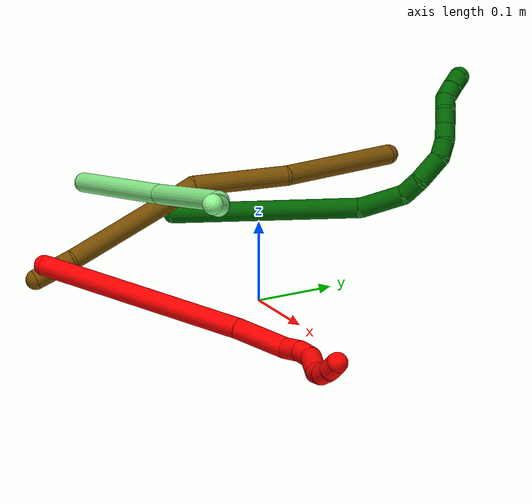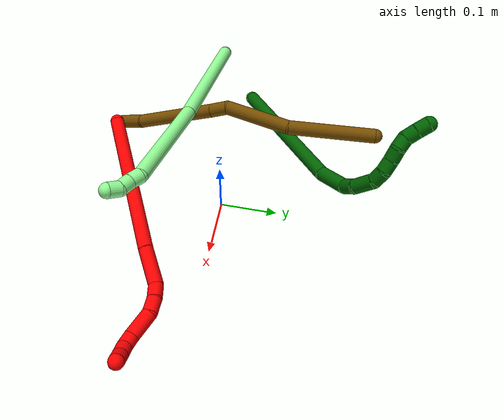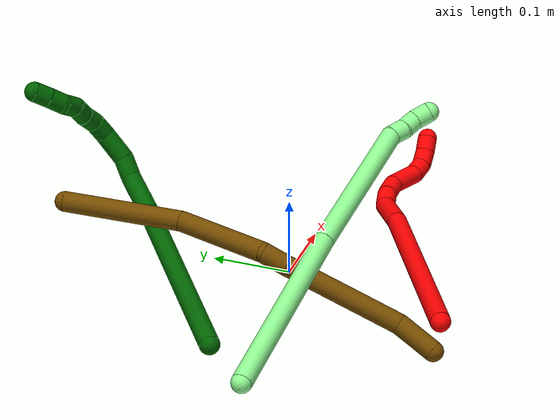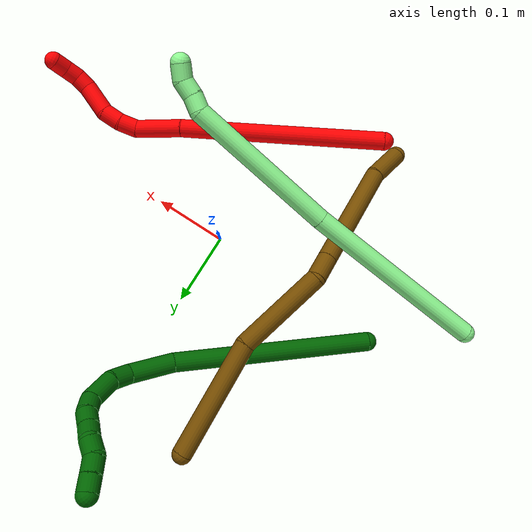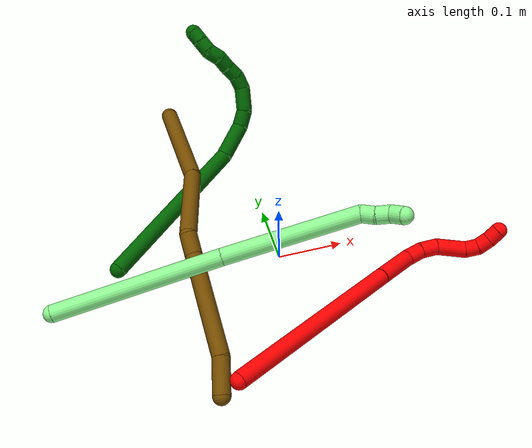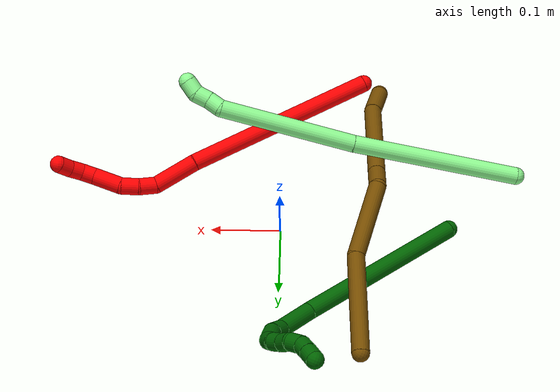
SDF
<sdf version="1.7">
 <world name="default">
  <model name="2">
   <static>0</static>
   <link name="2">
    <collision name="collision-cylinder-e_1_1_4">
     <pose>0.068239 0.036273 0.116521 -0.301792 0.509854 -0.079207</pose>
     <geometry><cylinder><radius>0.0125</radius><length>0.279639</length></cylinder></geometry>
     <surface>
      <friction><ode><mu>1.16</mu><mu2>1.16</mu2><slip1>0</slip1><slip2>0</slip2></ode></friction>
      <contact><ode><kp>1e+06</kp><kd>1</kd><max_vel>0</max_vel><min_depth>0.001</min_depth></ode></contact>
     </surface>
    </collision>
    <visual name="visual-cylinder-e_1_1_4">
     <pose>0.068239 0.036273 0.116521 -0.301792 0.509854 -0.079207</pose>
     <geometry><cylinder><radius>0.0125</radius><length>0.279639</length></cylinder></geometry>
     <material><ambient>1 0 0 1</ambient></material>
    </visual>
    <collision name="collision-cylinder-e_2_4_5">
     <pose>0.155263 0.082108 0.258052 -0.365177 0.611788 -0.116492</pose>
     <geometry><cylinder><radius>0.0125</radius><length>0.065416</length></cylinder></geometry>
     <surface>
      <friction><ode><mu>1.16</mu><mu2>1.16</mu2><slip1>0</slip1><slip2>0</slip2></ode></friction>
      <contact><ode><kp>1e+06</kp><kd>1</kd><max_vel>0</max_vel><min_depth>0.001</min_depth></ode></contact>
     </surface>
    </collision>
    <visual name="visual-cylinder-e_2_4_5">
     <pose>0.155263 0.082108 0.258052 -0.365177 0.611788 -0.116492</pose>
     <geometry><cylinder><radius>0.0125</radius><length>0.065416</length></cylinder></geometry>
     <material><ambient>1 0 0 1</ambient></material>
    </visual>
    <collision name="collision-cylinder-e_3_5_6">
     <pose>0.177439 0.091984 0.295327 -0.025599 0.269648 -0.003473</pose>
     <geometry><cylinder><radius>0.0125</radius><length>0.025458</length></cylinder></geometry>
     <surface>
      <friction><ode><mu>1.16</mu><mu2>1.16</mu2><slip1>0</slip1><slip2>0</slip2></ode></friction>
      <contact><ode><kp>1e+06</kp><kd>1</kd><max_vel>0</max_vel><min_depth>0.001</min_depth></ode></contact>
     </surface>
    </collision>
    <visual name="visual-cylinder-e_3_5_6">
     <pose>0.177439 0.091984 0.295327 -0.025599 0.269648 -0.003473</pose>
     <geometry><cylinder><radius>0.0125</radius><length>0.025458</length></cylinder></geometry>
     <material><ambient>1 0 0 1</ambient></material>
    </visual>
    <collision name="collision-cylinder-e_4_6_7">
     <pose>0.185185 0.089622 0.319383 0.223194 0.345761 0.039132</pose>
     <geometry><cylinder><radius>0.0125</radius><length>0.025704</length></cylinder></geometry>
     <surface>
      <friction><ode><mu>1.16</mu><mu2>1.16</mu2><slip1>0</slip1><slip2>0</slip2></ode></friction>
      <contact><ode><kp>1e+06</kp><kd>1</kd><max_vel>0</max_vel><min_depth>0.001</min_depth></ode></contact>
     </surface>
    </collision>
    <visual name="visual-cylinder-e_4_6_7">
     <pose>0.185185 0.089622 0.319383 0.223194 0.345761 0.039132</pose>
     <geometry><cylinder><radius>0.0125</radius><length>0.025704</length></cylinder></geometry>
     <material><ambient>1 0 0 1</ambient></material>
    </visual>
    <collision name="collision-cylinder-e_5_7_8">
     <pose>0.196237 0.074652 0.347981 0.631559 0.311137 0.102391</pose>
     <geometry><cylinder><radius>0.0125</radius><length>0.043747</length></cylinder></geometry>
     <surface>
      <friction><ode><mu>1.16</mu><mu2>1.16</mu2><slip1>0</slip1><slip2>0</slip2></ode></friction>
      <contact><ode><kp>1e+06</kp><kd>1</kd><max_vel>0</max_vel><min_depth>0.001</min_depth></ode></contact>
     </surface>
    </collision>
    <visual name="visual-cylinder-e_5_7_8">
     <pose>0.196237 0.074652 0.347981 0.631559 0.311137 0.102391</pose>
     <geometry><cylinder><radius>0.0125</radius><length>0.043747</length></cylinder></geometry>
     <material><ambient>1 0 0 1</ambient></material>
    </visual>
    <collision name="collision-cylinder-e_6_8_9">
     <pose>0.203868 0.05868 0.374059 0.377615 0.093424 0.017864</pose>
     <geometry><cylinder><radius>0.0125</radius><length>0.020036</length></cylinder></geometry>
     <surface>
      <friction><ode><mu>1.16</mu><mu2>1.16</mu2><slip1>0</slip1><slip2>0</slip2></ode></friction>
      <contact><ode><kp>1e+06</kp><kd>1</kd><max_vel>0</max_vel><min_depth>0.001</min_depth></ode></contact>
     </surface>
    </collision>
    <visual name="visual-cylinder-e_6_8_9">
     <pose>0.203868 0.05868 0.374059 0.377615 0.093424 0.017864</pose>
     <geometry><cylinder><radius>0.0125</radius><length>0.020036</length></cylinder></geometry>
     <material><ambient>1 0 0 1</ambient></material>
    </visual>
    <collision name="collision-cylinder-e_7_9_10">
     <pose>0.203281 0.054202 0.393182 0.081025 -0.152789 -0.006205</pose>
     <geometry><cylinder><radius>0.0125</radius><length>0.02</length></cylinder></geometry>
     <surface>
      <friction><ode><mu>1.16</mu><mu2>1.16</mu2><slip1>0</slip1><slip2>0</slip2></ode></friction>
      <contact><ode><kp>1e+06</kp><kd>1</kd><max_vel>0</max_vel><min_depth>0.001</min_depth></ode></contact>
     </surface>
    </collision>
    <visual name="visual-cylinder-e_7_9_10">
     <pose>0.203281 0.054202 0.393182 0.081025 -0.152789 -0.006205</pose>
     <geometry><cylinder><radius>0.0125</radius><length>0.02</length></cylinder></geometry>
     <material><ambient>1 0 0 1</ambient></material>
    </visual>
    <collision name="collision-cylinder-e_8_10_2">
     <pose>0.198322 0.053468 0.412424 -0.007014 -0.350813 0.001243</pose>
     <geometry><cylinder><radius>0.0125</radius><length>0.020001</length></cylinder></geometry>
     <surface>
      <friction><ode><mu>1.16</mu><mu2>1.16</mu2><slip1>0</slip1><slip2>0</slip2></ode></friction>
      <contact><ode><kp>1e+06</kp><kd>1</kd><max_vel>0</max_vel><min_depth>0.001</min_depth></ode></contact>
     </surface>
    </collision>
    <visual name="visual-cylinder-e_8_10_2">
     <pose>0.198322 0.053468 0.412424 -0.007014 -0.350813 0.001243</pose>
     <geometry><cylinder><radius>0.0125</radius><length>0.020001</length></cylinder></geometry>
     <material><ambient>1 0 0 1</ambient></material>
    </visual>
    <collision name="collision-sphere-2">
     <pose>0.194885 0.053534 0.421815 0 -0 0</pose>
     <geometry><sphere><radius>0.0125</radius></sphere></geometry>
     <surface>
      <friction><ode><mu>1.16</mu><mu2>1.16</mu2><slip1>0</slip1><slip2>0</slip2></ode></friction>
      <contact><ode><kp>1e+06</kp><kd>1</kd><max_vel>0</max_vel><min_depth>0.001</min_depth></ode></contact>
     </surface>
    </collision>
    <visual name="visual-sphere-2">
     <pose>0.194885 0.053534 0.421815 0 -0 0</pose>
     <geometry><sphere><radius>0.0125</radius></sphere></geometry>
     <material><ambient>1 0 0 1</ambient></material>
    </visual>
    <collision name="collision-sphere-10">
     <pose>0.201759 0.053402 0.403033 0 -0 0</pose>
     <geometry><sphere><radius>0.0125</radius></sphere></geometry>
     <surface>
      <friction><ode><mu>1.16</mu><mu2>1.16</mu2><slip1>0</slip1><slip2>0</slip2></ode></friction>
      <contact><ode><kp>1e+06</kp><kd>1</kd><max_vel>0</max_vel><min_depth>0.001</min_depth></ode></contact>
     </surface>
    </collision>
    <visual name="visual-sphere-10">
     <pose>0.201759 0.053402 0.403033 0 -0 0</pose>
     <geometry><sphere><radius>0.0125</radius></sphere></geometry>
     <material><ambient>1 0 0 1</ambient></material>
    </visual>
    <collision name="collision-sphere-9">
     <pose>0.204803 0.055002 0.383331 0 -0 0</pose>
     <geometry><sphere><radius>0.0125</radius></sphere></geometry>
     <surface>
      <friction><ode><mu>1.16</mu><mu2>1.16</mu2><slip1>0</slip1><slip2>0</slip2></ode></friction>
      <contact><ode><kp>1e+06</kp><kd>1</kd><max_vel>0</max_vel><min_depth>0.001</min_depth></ode></contact>
     </surface>
    </collision>
    <visual name="visual-sphere-9">
     <pose>0.204803 0.055002 0.383331 0 -0 0</pose>
     <geometry><sphere><radius>0.0125</radius></sphere></geometry>
     <material><ambient>1 0 0 1</ambient></material>
    </visual>
    <collision name="collision-sphere-4">
     <pose>0.136478 0.072546 0.233042 0 -0 0</pose>
     <geometry><sphere><radius>0.0125</radius></sphere></geometry>
     <surface>
      <friction><ode><mu>1.16</mu><mu2>1.16</mu2><slip1>0</slip1><slip2>0</slip2></ode></friction>
      <contact><ode><kp>1e+06</kp><kd>1</kd><max_vel>0</max_vel><min_depth>0.001</min_depth></ode></contact>
     </surface>
    </collision>
    <visual name="visual-sphere-4">
     <pose>0.136478 0.072546 0.233042 0 -0 0</pose>
     <geometry><sphere><radius>0.0125</radius></sphere></geometry>
     <material><ambient>1 0 0 1</ambient></material>
    </visual>
    <collision name="collision-sphere-1">
     <geometry><sphere><radius>0.0125</radius></sphere></geometry>
     <surface>
      <friction><ode><mu>1.16</mu><mu2>1.16</mu2><slip1>0</slip1><slip2>0</slip2></ode></friction>
      <contact><ode><kp>1e+06</kp><kd>1</kd><max_vel>0</max_vel><min_depth>0.001</min_depth></ode></contact>
     </surface>
    </collision>
    <visual name="visual-sphere-1">
     <geometry><sphere><radius>0.0125</radius></sphere></geometry>
     <material><ambient>1 0 0 1</ambient></material>
    </visual>
    <collision name="collision-sphere-8">
     <pose>0.202934 0.062358 0.364788 0 -0 0</pose>
     <geometry><sphere><radius>0.0125</radius></sphere></geometry>
     <surface>
      <friction><ode><mu>1.16</mu><mu2>1.16</mu2><slip1>0</slip1><slip2>0</slip2></ode></friction>
      <contact><ode><kp>1e+06</kp><kd>1</kd><max_vel>0</max_vel><min_depth>0.001</min_depth></ode></contact>
     </surface>
    </collision>
    <visual name="visual-sphere-8">
     <pose>0.202934 0.062358 0.364788 0 -0 0</pose>
     <geometry><sphere><radius>0.0125</radius></sphere></geometry>
     <material><ambient>1 0 0 1</ambient></material>
    </visual>
    <collision name="collision-sphere-5">
     <pose>0.174048 0.09167 0.283062 0 -0 0</pose>
     <geometry><sphere><radius>0.0125</radius></sphere></geometry>
     <surface>
      <friction><ode><mu>1.16</mu><mu2>1.16</mu2><slip1>0</slip1><slip2>0</slip2></ode></friction>
      <contact><ode><kp>1e+06</kp><kd>1</kd><max_vel>0</max_vel><min_depth>0.001</min_depth></ode></contact>
     </surface>
    </collision>
    <visual name="visual-sphere-5">
     <pose>0.174048 0.09167 0.283062 0 -0 0</pose>
     <geometry><sphere><radius>0.0125</radius></sphere></geometry>
     <material><ambient>1 0 0 1</ambient></material>
    </visual>
    <collision name="collision-sphere-6">
     <pose>0.18083 0.092298 0.307592 0 -0 0</pose>
     <geometry><sphere><radius>0.0125</radius></sphere></geometry>
     <surface>
      <friction><ode><mu>1.16</mu><mu2>1.16</mu2><slip1>0</slip1><slip2>0</slip2></ode></friction>
      <contact><ode><kp>1e+06</kp><kd>1</kd><max_vel>0</max_vel><min_depth>0.001</min_depth></ode></contact>
     </surface>
    </collision>
    <visual name="visual-sphere-6">
     <pose>0.18083 0.092298 0.307592 0 -0 0</pose>
     <geometry><sphere><radius>0.0125</radius></sphere></geometry>
     <material><ambient>1 0 0 1</ambient></material>
    </visual>
    <collision name="collision-sphere-7">
     <pose>0.189541 0.086946 0.331175 0 -0 0</pose>
     <geometry><sphere><radius>0.0125</radius></sphere></geometry>
     <surface>
      <friction><ode><mu>1.16</mu><mu2>1.16</mu2><slip1>0</slip1><slip2>0</slip2></ode></friction>
      <contact><ode><kp>1e+06</kp><kd>1</kd><max_vel>0</max_vel><min_depth>0.001</min_depth></ode></contact>
     </surface>
    </collision>
    <visual name="visual-sphere-7">
     <pose>0.189541 0.086946 0.331175 0 -0 0</pose>
     <geometry><sphere><radius>0.0125</radius></sphere></geometry>
     <material><ambient>1 0 0 1</ambient></material>
    </visual>
    <inertial>
     <pose>0.118436 0.05351 0.208045 0 -0 0</pose>
     <mass>0.5</mass>
     <inertia>
      <ixx>0.00152</ixx>
      <ixy>0</ixy>
      <ixz>0</ixz>
      <iyy>0.001683</iyy>
      <iyz>0</iyz>
      <izz>-0.001357</izz>
     </inertia>
    </inertial>
   </link>
   <pose>-0.118764 -0.229082 0.047534 0.280847 1.14586 0.46319</pose>
  </model>
  <model name="6">
   <static>0</static>
   <link name="6">
    <collision name="collision-cylinder-e_1_1_4">
     <pose>0.003642 0.090975 0.089647 -0.792749 0.028505 -0.011931</pose>
     <geometry><cylinder><radius>0.0125</radius><length>0.255548</length></cylinder></geometry>
     <surface>
      <friction><ode><mu>1.16</mu><mu2>1.16</mu2><slip1>0</slip1><slip2>0</slip2></ode></friction>
      <contact><ode><kp>1e+06</kp><kd>1</kd><max_vel>0</max_vel><min_depth>0.001</min_depth></ode></contact>
     </surface>
    </collision>
    <visual name="visual-cylinder-e_1_1_4">
     <pose>0.003642 0.090975 0.089647 -0.792749 0.028505 -0.011931</pose>
     <geometry><cylinder><radius>0.0125</radius><length>0.255548</length></cylinder></geometry>
     <material><ambient>0 0.392157 0.003922 1</ambient></material>
    </visual>
    <collision name="collision-cylinder-e_2_4_5">
     <pose>0.015002 0.203833 0.196663 -0.899907 0.26954 -0.130794</pose>
     <geometry><cylinder><radius>0.0125</radius><length>0.057971</length></cylinder></geometry>
     <surface>
      <friction><ode><mu>1.16</mu><mu2>1.16</mu2><slip1>0</slip1><slip2>0</slip2></ode></friction>
      <contact><ode><kp>1e+06</kp><kd>1</kd><max_vel>0</max_vel><min_depth>0.001</min_depth></ode></contact>
     </surface>
    </collision>
    <visual name="visual-cylinder-e_2_4_5">
     <pose>0.015002 0.203833 0.196663 -0.899907 0.26954 -0.130794</pose>
     <geometry><cylinder><radius>0.0125</radius><length>0.057971</length></cylinder></geometry>
     <material><ambient>0 0.392157 0.003922 1</ambient></material>
    </visual>
    <collision name="collision-cylinder-e_3_5_6">
     <pose>0.029473 0.236683 0.217663 -1.25105 0.528982 -0.386363</pose>
     <geometry><cylinder><radius>0.0125</radius><length>0.026762</length></cylinder></geometry>
     <surface>
      <friction><ode><mu>1.16</mu><mu2>1.16</mu2><slip1>0</slip1><slip2>0</slip2></ode></friction>
      <contact><ode><kp>1e+06</kp><kd>1</kd><max_vel>0</max_vel><min_depth>0.001</min_depth></ode></contact>
     </surface>
    </collision>
    <visual name="visual-cylinder-e_3_5_6">
     <pose>0.029473 0.236683 0.217663 -1.25105 0.528982 -0.386363</pose>
     <geometry><cylinder><radius>0.0125</radius><length>0.026762</length></cylinder></geometry>
     <material><ambient>0 0.392157 0.003922 1</ambient></material>
    </visual>
    <collision name="collision-cylinder-e_4_6_7">
     <pose>0.05074 0.258379 0.226387 -1.12759 0.885035 -0.582172</pose>
     <geometry><cylinder><radius>0.0125</radius><length>0.037508</length></cylinder></geometry>
     <surface>
      <friction><ode><mu>1.16</mu><mu2>1.16</mu2><slip1>0</slip1><slip2>0</slip2></ode></friction>
      <contact><ode><kp>1e+06</kp><kd>1</kd><max_vel>0</max_vel><min_depth>0.001</min_depth></ode></contact>
     </surface>
    </collision>
    <visual name="visual-cylinder-e_4_6_7">
     <pose>0.05074 0.258379 0.226387 -1.12759 0.885035 -0.582172</pose>
     <geometry><cylinder><radius>0.0125</radius><length>0.037508</length></cylinder></geometry>
     <material><ambient>0 0.392157 0.003922 1</ambient></material>
    </visual>
    <collision name="collision-cylinder-e_5_7_8">
     <pose>0.075477 0.272734 0.230545 -1.82326 1.21961 -1.46753</pose>
     <geometry><cylinder><radius>0.0125</radius><length>0.021773</length></cylinder></geometry>
     <surface>
      <friction><ode><mu>1.16</mu><mu2>1.16</mu2><slip1>0</slip1><slip2>0</slip2></ode></friction>
      <contact><ode><kp>1e+06</kp><kd>1</kd><max_vel>0</max_vel><min_depth>0.001</min_depth></ode></contact>
     </surface>
    </collision>
    <visual name="visual-cylinder-e_5_7_8">
     <pose>0.075477 0.272734 0.230545 -1.82326 1.21961 -1.46753</pose>
     <geometry><cylinder><radius>0.0125</radius><length>0.021773</length></cylinder></geometry>
     <material><ambient>0 0.392157 0.003922 1</ambient></material>
    </visual>
    <collision name="collision-cylinder-e_6_8_9">
     <pose>0.095609 0.276451 0.227412 -3.10044 1.3524 -3.09031</pose>
     <geometry><cylinder><radius>0.0125</radius><length>0.020303</length></cylinder></geometry>
     <surface>
      <friction><ode><mu>1.16</mu><mu2>1.16</mu2><slip1>0</slip1><slip2>0</slip2></ode></friction>
      <contact><ode><kp>1e+06</kp><kd>1</kd><max_vel>0</max_vel><min_depth>0.001</min_depth></ode></contact>
     </surface>
    </collision>
    <visual name="visual-cylinder-e_6_8_9">
     <pose>0.095609 0.276451 0.227412 -3.10044 1.3524 -3.09031</pose>
     <geometry><cylinder><radius>0.0125</radius><length>0.020303</length></cylinder></geometry>
     <material><ambient>0 0.392157 0.003922 1</ambient></material>
    </visual>
    <collision name="collision-cylinder-e_7_9_10">
     <pose>0.115043 0.277866 0.222249 -2.72117 1.24218 -2.56203</pose>
     <geometry><cylinder><radius>0.0125</radius><length>0.020124</length></cylinder></geometry>
     <surface>
      <friction><ode><mu>1.16</mu><mu2>1.16</mu2><slip1>0</slip1><slip2>0</slip2></ode></friction>
      <contact><ode><kp>1e+06</kp><kd>1</kd><max_vel>0</max_vel><min_depth>0.001</min_depth></ode></contact>
     </surface>
    </collision>
    <visual name="visual-cylinder-e_7_9_10">
     <pose>0.115043 0.277866 0.222249 -2.72117 1.24218 -2.56203</pose>
     <geometry><cylinder><radius>0.0125</radius><length>0.020124</length></cylinder></geometry>
     <material><ambient>0 0.392157 0.003922 1</ambient></material>
    </visual>
    <collision name="collision-cylinder-e_8_10_11">
     <pose>0.134223 0.276932 0.217962 2.10045 1.30595 1.8552</pose>
     <geometry><cylinder><radius>0.0125</radius><length>0.020009</length></cylinder></geometry>
     <surface>
      <friction><ode><mu>1.16</mu><mu2>1.16</mu2><slip1>0</slip1><slip2>0</slip2></ode></friction>
      <contact><ode><kp>1e+06</kp><kd>1</kd><max_vel>0</max_vel><min_depth>0.001</min_depth></ode></contact>
     </surface>
    </collision>
    <visual name="visual-cylinder-e_8_10_11">
     <pose>0.134223 0.276932 0.217962 2.10045 1.30595 1.8552</pose>
     <geometry><cylinder><radius>0.0125</radius><length>0.020009</length></cylinder></geometry>
     <material><ambient>0 0.392157 0.003922 1</ambient></material>
    </visual>
    <collision name="collision-cylinder-e_9_11_12">
     <pose>0.153639 0.275037 0.218787 -0.16836 1.3511 -0.135025</pose>
     <geometry><cylinder><radius>0.0125</radius><length>0.020001</length></cylinder></geometry>
     <surface>
      <friction><ode><mu>1.16</mu><mu2>1.16</mu2><slip1>0</slip1><slip2>0</slip2></ode></friction>
      <contact><ode><kp>1e+06</kp><kd>1</kd><max_vel>0</max_vel><min_depth>0.001</min_depth></ode></contact>
     </surface>
    </collision>
    <visual name="visual-cylinder-e_9_11_12">
     <pose>0.153639 0.275037 0.218787 -0.16836 1.3511 -0.135025</pose>
     <geometry><cylinder><radius>0.0125</radius><length>0.020001</length></cylinder></geometry>
     <material><ambient>0 0.392157 0.003922 1</ambient></material>
    </visual>
    <collision name="collision-cylinder-e_10_12_2">
     <pose>0.173047 0.27557 0.223561 -0.063931 1.3046 -0.048841</pose>
     <geometry><cylinder><radius>0.0125</radius><length>0.02</length></cylinder></geometry>
     <surface>
      <friction><ode><mu>1.16</mu><mu2>1.16</mu2><slip1>0</slip1><slip2>0</slip2></ode></friction>
      <contact><ode><kp>1e+06</kp><kd>1</kd><max_vel>0</max_vel><min_depth>0.001</min_depth></ode></contact>
     </surface>
    </collision>
    <visual name="visual-cylinder-e_10_12_2">
     <pose>0.173047 0.27557 0.223561 -0.063931 1.3046 -0.048841</pose>
     <geometry><cylinder><radius>0.0125</radius><length>0.02</length></cylinder></geometry>
     <material><ambient>0 0.392157 0.003922 1</ambient></material>
    </visual>
    <collision name="collision-sphere-2">
     <pose>0.182695 0.275738 0.226186 0 -0 0</pose>
     <geometry><sphere><radius>0.0125</radius></sphere></geometry>
     <surface>
      <friction><ode><mu>1.16</mu><mu2>1.16</mu2><slip1>0</slip1><slip2>0</slip2></ode></friction>
      <contact><ode><kp>1e+06</kp><kd>1</kd><max_vel>0</max_vel><min_depth>0.001</min_depth></ode></contact>
     </surface>
    </collision>
    <visual name="visual-sphere-2">
     <pose>0.182695 0.275738 0.226186 0 -0 0</pose>
     <geometry><sphere><radius>0.0125</radius></sphere></geometry>
     <material><ambient>0 0.392157 0.003922 1</ambient></material>
    </visual>
    <collision name="collision-sphere-12">
     <pose>0.163399 0.275402 0.220936 0 -0 0</pose>
     <geometry><sphere><radius>0.0125</radius></sphere></geometry>
     <surface>
      <friction><ode><mu>1.16</mu><mu2>1.16</mu2><slip1>0</slip1><slip2>0</slip2></ode></friction>
      <contact><ode><kp>1e+06</kp><kd>1</kd><max_vel>0</max_vel><min_depth>0.001</min_depth></ode></contact>
     </surface>
    </collision>
    <visual name="visual-sphere-12">
     <pose>0.163399 0.275402 0.220936 0 -0 0</pose>
     <geometry><sphere><radius>0.0125</radius></sphere></geometry>
     <material><ambient>0 0.392157 0.003922 1</ambient></material>
    </visual>
    <collision name="collision-sphere-11">
     <pose>0.143879 0.274672 0.216639 0 -0 0</pose>
     <geometry><sphere><radius>0.0125</radius></sphere></geometry>
     <surface>
      <friction><ode><mu>1.16</mu><mu2>1.16</mu2><slip1>0</slip1><slip2>0</slip2></ode></friction>
      <contact><ode><kp>1e+06</kp><kd>1</kd><max_vel>0</max_vel><min_depth>0.001</min_depth></ode></contact>
     </surface>
    </collision>
    <visual name="visual-sphere-11">
     <pose>0.143879 0.274672 0.216639 0 -0 0</pose>
     <geometry><sphere><radius>0.0125</radius></sphere></geometry>
     <material><ambient>0 0.392157 0.003922 1</ambient></material>
    </visual>
    <collision name="collision-sphere-10">
     <pose>0.124567 0.279192 0.219285 0 -0 0</pose>
     <geometry><sphere><radius>0.0125</radius></sphere></geometry>
     <surface>
      <friction><ode><mu>1.16</mu><mu2>1.16</mu2><slip1>0</slip1><slip2>0</slip2></ode></friction>
      <contact><ode><kp>1e+06</kp><kd>1</kd><max_vel>0</max_vel><min_depth>0.001</min_depth></ode></contact>
     </surface>
    </collision>
    <visual name="visual-sphere-10">
     <pose>0.124567 0.279192 0.219285 0 -0 0</pose>
     <geometry><sphere><radius>0.0125</radius></sphere></geometry>
     <material><ambient>0 0.392157 0.003922 1</ambient></material>
    </visual>
    <collision name="collision-sphere-9">
     <pose>0.10552 0.276541 0.225214 0 -0 0</pose>
     <geometry><sphere><radius>0.0125</radius></sphere></geometry>
     <surface>
      <friction><ode><mu>1.16</mu><mu2>1.16</mu2><slip1>0</slip1><slip2>0</slip2></ode></friction>
      <contact><ode><kp>1e+06</kp><kd>1</kd><max_vel>0</max_vel><min_depth>0.001</min_depth></ode></contact>
     </surface>
    </collision>
    <visual name="visual-sphere-9">
     <pose>0.10552 0.276541 0.225214 0 -0 0</pose>
     <geometry><sphere><radius>0.0125</radius></sphere></geometry>
     <material><ambient>0 0.392157 0.003922 1</ambient></material>
    </visual>
    <collision name="collision-sphere-4">
     <pose>0.007283 0.181949 0.179294 0 -0 0</pose>
     <geometry><sphere><radius>0.0125</radius></sphere></geometry>
     <surface>
      <friction><ode><mu>1.16</mu><mu2>1.16</mu2><slip1>0</slip1><slip2>0</slip2></ode></friction>
      <contact><ode><kp>1e+06</kp><kd>1</kd><max_vel>0</max_vel><min_depth>0.001</min_depth></ode></contact>
     </surface>
    </collision>
    <visual name="visual-sphere-4">
     <pose>0.007283 0.181949 0.179294 0 -0 0</pose>
     <geometry><sphere><radius>0.0125</radius></sphere></geometry>
     <material><ambient>0 0.392157 0.003922 1</ambient></material>
    </visual>
    <collision name="collision-sphere-1">
     <geometry><sphere><radius>0.0125</radius></sphere></geometry>
     <surface>
      <friction><ode><mu>1.16</mu><mu2>1.16</mu2><slip1>0</slip1><slip2>0</slip2></ode></friction>
      <contact><ode><kp>1e+06</kp><kd>1</kd><max_vel>0</max_vel><min_depth>0.001</min_depth></ode></contact>
     </surface>
    </collision>
    <visual name="visual-sphere-1">
     <geometry><sphere><radius>0.0125</radius></sphere></geometry>
     <material><ambient>0 0.392157 0.003922 1</ambient></material>
    </visual>
    <collision name="collision-sphere-8">
     <pose>0.085699 0.27636 0.229609 0 -0 0</pose>
     <geometry><sphere><radius>0.0125</radius></sphere></geometry>
     <surface>
      <friction><ode><mu>1.16</mu><mu2>1.16</mu2><slip1>0</slip1><slip2>0</slip2></ode></friction>
      <contact><ode><kp>1e+06</kp><kd>1</kd><max_vel>0</max_vel><min_depth>0.001</min_depth></ode></contact>
     </surface>
    </collision>
    <visual name="visual-sphere-8">
     <pose>0.085699 0.27636 0.229609 0 -0 0</pose>
     <geometry><sphere><radius>0.0125</radius></sphere></geometry>
     <material><ambient>0 0.392157 0.003922 1</ambient></material>
    </visual>
    <collision name="collision-sphere-5">
     <pose>0.02272 0.225717 0.214032 0 -0 0</pose>
     <geometry><sphere><radius>0.0125</radius></sphere></geometry>
     <surface>
      <friction><ode><mu>1.16</mu><mu2>1.16</mu2><slip1>0</slip1><slip2>0</slip2></ode></friction>
      <contact><ode><kp>1e+06</kp><kd>1</kd><max_vel>0</max_vel><min_depth>0.001</min_depth></ode></contact>
     </surface>
    </collision>
    <visual name="visual-sphere-5">
     <pose>0.02272 0.225717 0.214032 0 -0 0</pose>
     <geometry><sphere><radius>0.0125</radius></sphere></geometry>
     <material><ambient>0 0.392157 0.003922 1</ambient></material>
    </visual>
    <collision name="collision-sphere-6">
     <pose>0.036226 0.24765 0.221294 0 -0 0</pose>
     <geometry><sphere><radius>0.0125</radius></sphere></geometry>
     <surface>
      <friction><ode><mu>1.16</mu><mu2>1.16</mu2><slip1>0</slip1><slip2>0</slip2></ode></friction>
      <contact><ode><kp>1e+06</kp><kd>1</kd><max_vel>0</max_vel><min_depth>0.001</min_depth></ode></contact>
     </surface>
    </collision>
    <visual name="visual-sphere-6">
     <pose>0.036226 0.24765 0.221294 0 -0 0</pose>
     <geometry><sphere><radius>0.0125</radius></sphere></geometry>
     <material><ambient>0 0.392157 0.003922 1</ambient></material>
    </visual>
    <collision name="collision-sphere-7">
     <pose>0.065255 0.269107 0.23148 0 -0 0</pose>
     <geometry><sphere><radius>0.0125</radius></sphere></geometry>
     <surface>
      <friction><ode><mu>1.16</mu><mu2>1.16</mu2><slip1>0</slip1><slip2>0</slip2></ode></friction>
      <contact><ode><kp>1e+06</kp><kd>1</kd><max_vel>0</max_vel><min_depth>0.001</min_depth></ode></contact>
     </surface>
    </collision>
    <visual name="visual-sphere-7">
     <pose>0.065255 0.269107 0.23148 0 -0 0</pose>
     <geometry><sphere><radius>0.0125</radius></sphere></geometry>
     <material><ambient>0 0.392157 0.003922 1</ambient></material>
    </visual>
    <inertial>
     <pose>0.039223 0.169574 0.151888 0 -0 0</pose>
     <mass>0.5</mass>
     <inertia>
      <ixx>0.001415</ixx>
      <ixy>0</ixy>
      <ixz>0</ixz>
      <iyy>0.001009</iyy>
      <iyz>0</iyz>
      <izz>-0.001059</izz>
     </inertia>
    </inertial>
   </link>
   <pose>-0.241482 0.011907 0.036914 2.1879 -0.644443 2.32458</pose>
  </model>
  <model name="12">
   <static>0</static>
   <link name="12">
    <collision name="collision-cylinder-e_1_1_4">
     <pose>-0.017512 -0.071326 -0.015069 1.779 -0.235752 -0.290067</pose>
     <geometry><cylinder><radius>0.0125</radius><length>0.149949</length></cylinder></geometry>
     <surface>
      <friction><ode><mu>1.16</mu><mu2>1.16</mu2><slip1>0</slip1><slip2>0</slip2></ode></friction>
      <contact><ode><kp>1e+06</kp><kd>1</kd><max_vel>0</max_vel><min_depth>0.001</min_depth></ode></contact>
     </surface>
    </collision>
    <visual name="visual-cylinder-e_1_1_4">
     <pose>-0.017512 -0.071326 -0.015069 1.779 -0.235752 -0.290067</pose>
     <geometry><cylinder><radius>0.0125</radius><length>0.149949</length></cylinder></geometry>
     <material><ambient>0.466667 0.301961 0 1</ambient></material>
    </visual>
    <collision name="collision-cylinder-e_2_4_5">
     <pose>-0.041164 -0.201518 -0.026127 1.50276 -0.103685 -0.096871</pose>
     <geometry><cylinder><radius>0.0125</radius><length>0.118641</length></cylinder></geometry>
     <surface>
      <friction><ode><mu>1.16</mu><mu2>1.16</mu2><slip1>0</slip1><slip2>0</slip2></ode></friction>
      <contact><ode><kp>1e+06</kp><kd>1</kd><max_vel>0</max_vel><min_depth>0.001</min_depth></ode></contact>
     </surface>
    </collision>
    <visual name="visual-cylinder-e_2_4_5">
     <pose>-0.041164 -0.201518 -0.026127 1.50276 -0.103685 -0.096871</pose>
     <geometry><cylinder><radius>0.0125</radius><length>0.118641</length></cylinder></geometry>
     <material><ambient>0.466667 0.301961 0 1</ambient></material>
    </visual>
    <collision name="collision-cylinder-e_3_5_6">
     <pose>-0.055932 -0.273996 -0.0218 1.54765 -0.564809 -0.552539</pose>
     <geometry><cylinder><radius>0.0125</radius><length>0.032238</length></cylinder></geometry>
     <surface>
      <friction><ode><mu>1.16</mu><mu2>1.16</mu2><slip1>0</slip1><slip2>0</slip2></ode></friction>
      <contact><ode><kp>1e+06</kp><kd>1</kd><max_vel>0</max_vel><min_depth>0.001</min_depth></ode></contact>
     </surface>
    </collision>
    <visual name="visual-cylinder-e_3_5_6">
     <pose>-0.055932 -0.273996 -0.0218 1.54765 -0.564809 -0.552539</pose>
     <geometry><cylinder><radius>0.0125</radius><length>0.032238</length></cylinder></geometry>
     <material><ambient>0.466667 0.301961 0 1</ambient></material>
    </visual>
    <collision name="collision-cylinder-e_4_6_7">
     <pose>-0.102121 -0.351419 -0.021565 1.57205 -0.532021 -0.532656</pose>
     <geometry><cylinder><radius>0.0125</radius><length>0.148091</length></cylinder></geometry>
     <surface>
      <friction><ode><mu>1.16</mu><mu2>1.16</mu2><slip1>0</slip1><slip2>0</slip2></ode></friction>
      <contact><ode><kp>1e+06</kp><kd>1</kd><max_vel>0</max_vel><min_depth>0.001</min_depth></ode></contact>
     </surface>
    </collision>
    <visual name="visual-cylinder-e_4_6_7">
     <pose>-0.102121 -0.351419 -0.021565 1.57205 -0.532021 -0.532656</pose>
     <geometry><cylinder><radius>0.0125</radius><length>0.148091</length></cylinder></geometry>
     <material><ambient>0.466667 0.301961 0 1</ambient></material>
    </visual>
    <collision name="collision-cylinder-e_5_7_2">
     <pose>-0.15096 -0.437343 -0.015632 1.30527 -0.457328 -0.352109</pose>
     <geometry><cylinder><radius>0.0125</radius><length>0.05108</length></cylinder></geometry>
     <surface>
      <friction><ode><mu>1.16</mu><mu2>1.16</mu2><slip1>0</slip1><slip2>0</slip2></ode></friction>
      <contact><ode><kp>1e+06</kp><kd>1</kd><max_vel>0</max_vel><min_depth>0.001</min_depth></ode></contact>
     </surface>
    </collision>
    <visual name="visual-cylinder-e_5_7_2">
     <pose>-0.15096 -0.437343 -0.015632 1.30527 -0.457328 -0.352109</pose>
     <geometry><cylinder><radius>0.0125</radius><length>0.05108</length></cylinder></geometry>
     <material><ambient>0.466667 0.301961 0 1</ambient></material>
    </visual>
    <collision name="collision-sphere-2">
     <pose>-0.162237 -0.459455 -0.009618 0 -0 0</pose>
     <geometry><sphere><radius>0.0125</radius></sphere></geometry>
     <surface>
      <friction><ode><mu>1.16</mu><mu2>1.16</mu2><slip1>0</slip1><slip2>0</slip2></ode></friction>
      <contact><ode><kp>1e+06</kp><kd>1</kd><max_vel>0</max_vel><min_depth>0.001</min_depth></ode></contact>
     </surface>
    </collision>
    <visual name="visual-sphere-2">
     <pose>-0.162237 -0.459455 -0.009618 0 -0 0</pose>
     <geometry><sphere><radius>0.0125</radius></sphere></geometry>
     <material><ambient>0.466667 0.301961 0 1</ambient></material>
    </visual>
    <collision name="collision-sphere-7">
     <pose>-0.139683 -0.415231 -0.021645 0 -0 0</pose>
     <geometry><sphere><radius>0.0125</radius></sphere></geometry>
     <surface>
      <friction><ode><mu>1.16</mu><mu2>1.16</mu2><slip1>0</slip1><slip2>0</slip2></ode></friction>
      <contact><ode><kp>1e+06</kp><kd>1</kd><max_vel>0</max_vel><min_depth>0.001</min_depth></ode></contact>
     </surface>
    </collision>
    <visual name="visual-sphere-7">
     <pose>-0.139683 -0.415231 -0.021645 0 -0 0</pose>
     <geometry><sphere><radius>0.0125</radius></sphere></geometry>
     <material><ambient>0.466667 0.301961 0 1</ambient></material>
    </visual>
    <collision name="collision-sphere-6">
     <pose>-0.06456 -0.287608 -0.021485 0 -0 0</pose>
     <geometry><sphere><radius>0.0125</radius></sphere></geometry>
     <surface>
      <friction><ode><mu>1.16</mu><mu2>1.16</mu2><slip1>0</slip1><slip2>0</slip2></ode></friction>
      <contact><ode><kp>1e+06</kp><kd>1</kd><max_vel>0</max_vel><min_depth>0.001</min_depth></ode></contact>
     </surface>
    </collision>
    <visual name="visual-sphere-6">
     <pose>-0.06456 -0.287608 -0.021485 0 -0 0</pose>
     <geometry><sphere><radius>0.0125</radius></sphere></geometry>
     <material><ambient>0.466667 0.301961 0 1</ambient></material>
    </visual>
    <collision name="collision-sphere-5">
     <pose>-0.047304 -0.260384 -0.022115 0 -0 0</pose>
     <geometry><sphere><radius>0.0125</radius></sphere></geometry>
     <surface>
      <friction><ode><mu>1.16</mu><mu2>1.16</mu2><slip1>0</slip1><slip2>0</slip2></ode></friction>
      <contact><ode><kp>1e+06</kp><kd>1</kd><max_vel>0</max_vel><min_depth>0.001</min_depth></ode></contact>
     </surface>
    </collision>
    <visual name="visual-sphere-5">
     <pose>-0.047304 -0.260384 -0.022115 0 -0 0</pose>
     <geometry><sphere><radius>0.0125</radius></sphere></geometry>
     <material><ambient>0.466667 0.301961 0 1</ambient></material>
    </visual>
    <collision name="collision-sphere-1">
     <geometry><sphere><radius>0.0125</radius></sphere></geometry>
     <surface>
      <friction><ode><mu>1.16</mu><mu2>1.16</mu2><slip1>0</slip1><slip2>0</slip2></ode></friction>
      <contact><ode><kp>1e+06</kp><kd>1</kd><max_vel>0</max_vel><min_depth>0.001</min_depth></ode></contact>
     </surface>
    </collision>
    <visual name="visual-sphere-1">
     <geometry><sphere><radius>0.0125</radius></sphere></geometry>
     <material><ambient>0.466667 0.301961 0 1</ambient></material>
    </visual>
    <collision name="collision-sphere-4">
     <pose>-0.035024 -0.142653 -0.030138 0 -0 0</pose>
     <geometry><sphere><radius>0.0125</radius></sphere></geometry>
     <surface>
      <friction><ode><mu>1.16</mu><mu2>1.16</mu2><slip1>0</slip1><slip2>0</slip2></ode></friction>
      <contact><ode><kp>1e+06</kp><kd>1</kd><max_vel>0</max_vel><min_depth>0.001</min_depth></ode></contact>
     </surface>
    </collision>
    <visual name="visual-sphere-4">
     <pose>-0.035024 -0.142653 -0.030138 0 -0 0</pose>
     <geometry><sphere><radius>0.0125</radius></sphere></geometry>
     <material><ambient>0.466667 0.301961 0 1</ambient></material>
    </visual>
    <inertial>
     <pose>-0.064294 -0.235637 -0.020108 0 -0 0</pose>
     <mass>0.5</mass>
     <inertia>
      <ixx>0.000396</ixx>
      <ixy>0</ixy>
      <ixz>0</ixz>
      <iyy>-0.000206</iyy>
      <iyz>0</iyz>
      <izz>0.000898</izz>
     </inertia>
    </inertial>
   </link>
   <pose>-0.113837 0.248987 0.11345 -2.95282 -1.04339 2.72924</pose>
  </model>
  <model name="13">
   <static>0</static>
   <link name="13">
    <collision name="collision-cylinder-e_1_1_4">
     <pose>0.110577 -0.019557 0.045559 0.405477 1.1493 0.264667</pose>
     <geometry><cylinder><radius>0.0125</radius><length>0.242367</length></cylinder></geometry>
     <surface>
      <friction><ode><mu>1.16</mu><mu2>1.16</mu2><slip1>0</slip1><slip2>0</slip2></ode></friction>
      <contact><ode><kp>1e+06</kp><kd>1</kd><max_vel>0</max_vel><min_depth>0.001</min_depth></ode></contact>
     </surface>
    </collision>
    <visual name="visual-cylinder-e_1_1_4">
     <pose>0.110577 -0.019557 0.045559 0.405477 1.1493 0.264667</pose>
     <geometry><cylinder><radius>0.0125</radius><length>0.242367</length></cylinder></geometry>
     <material><ambient>0.564706 0.984314 0.572549 1</ambient></material>
    </visual>
    <collision name="collision-cylinder-e_2_4_5">
     <pose>0.308164 -0.055038 0.133598 0.358654 1.09018 0.218961</pose>
     <geometry><cylinder><radius>0.0125</radius><length>0.196254</length></cylinder></geometry>
     <surface>
      <friction><ode><mu>1.16</mu><mu2>1.16</mu2><slip1>0</slip1><slip2>0</slip2></ode></friction>
      <contact><ode><kp>1e+06</kp><kd>1</kd><max_vel>0</max_vel><min_depth>0.001</min_depth></ode></contact>
     </surface>
    </collision>
    <visual name="visual-cylinder-e_2_4_5">
     <pose>0.308164 -0.055038 0.133598 0.358654 1.09018 0.218961</pose>
     <geometry><cylinder><radius>0.0125</radius><length>0.196254</length></cylinder></geometry>
     <material><ambient>0.564706 0.984314 0.572549 1</ambient></material>
    </visual>
    <collision name="collision-cylinder-e_3_5_6">
     <pose>0.401103 -0.0754 0.182989 0.570844 0.625193 0.189106</pose>
     <geometry><cylinder><radius>0.0125</radius><length>0.020258</length></cylinder></geometry>
     <surface>
      <friction><ode><mu>1.16</mu><mu2>1.16</mu2><slip1>0</slip1><slip2>0</slip2></ode></friction>
      <contact><ode><kp>1e+06</kp><kd>1</kd><max_vel>0</max_vel><min_depth>0.001</min_depth></ode></contact>
     </surface>
    </collision>
    <visual name="visual-cylinder-e_3_5_6">
     <pose>0.401103 -0.0754 0.182989 0.570844 0.625193 0.189106</pose>
     <geometry><cylinder><radius>0.0125</radius><length>0.020258</length></cylinder></geometry>
     <material><ambient>0.564706 0.984314 0.572549 1</ambient></material>
    </visual>
    <collision name="collision-cylinder-e_4_6_7">
     <pose>0.414694 -0.082916 0.19615 0.457604 0.832957 0.205307</pose>
     <geometry><cylinder><radius>0.0125</radius><length>0.020714</length></cylinder></geometry>
     <surface>
      <friction><ode><mu>1.16</mu><mu2>1.16</mu2><slip1>0</slip1><slip2>0</slip2></ode></friction>
      <contact><ode><kp>1e+06</kp><kd>1</kd><max_vel>0</max_vel><min_depth>0.001</min_depth></ode></contact>
     </surface>
    </collision>
    <visual name="visual-cylinder-e_4_6_7">
     <pose>0.414694 -0.082916 0.19615 0.457604 0.832957 0.205307</pose>
     <geometry><cylinder><radius>0.0125</radius><length>0.020714</length></cylinder></geometry>
     <material><ambient>0.564706 0.984314 0.572549 1</ambient></material>
    </visual>
    <collision name="collision-cylinder-e_5_7_2">
     <pose>0.425911 -0.088687 0.211578 0.285407 0.355698 0.051641</pose>
     <geometry><cylinder><radius>0.0125</radius><length>0.020407</length></cylinder></geometry>
     <surface>
      <friction><ode><mu>1.16</mu><mu2>1.16</mu2><slip1>0</slip1><slip2>0</slip2></ode></friction>
      <contact><ode><kp>1e+06</kp><kd>1</kd><max_vel>0</max_vel><min_depth>0.001</min_depth></ode></contact>
     </surface>
    </collision>
    <visual name="visual-cylinder-e_5_7_2">
     <pose>0.425911 -0.088687 0.211578 0.285407 0.355698 0.051641</pose>
     <geometry><cylinder><radius>0.0125</radius><length>0.020407</length></cylinder></geometry>
     <material><ambient>0.564706 0.984314 0.572549 1</ambient></material>
    </visual>
    <collision name="collision-sphere-2">
     <pose>0.429464 -0.09138 0.220756 0 -0 0</pose>
     <geometry><sphere><radius>0.0125</radius></sphere></geometry>
     <surface>
      <friction><ode><mu>1.16</mu><mu2>1.16</mu2><slip1>0</slip1><slip2>0</slip2></ode></friction>
      <contact><ode><kp>1e+06</kp><kd>1</kd><max_vel>0</max_vel><min_depth>0.001</min_depth></ode></contact>
     </surface>
    </collision>
    <visual name="visual-sphere-2">
     <pose>0.429464 -0.09138 0.220756 0 -0 0</pose>
     <geometry><sphere><radius>0.0125</radius></sphere></geometry>
     <material><ambient>0.564706 0.984314 0.572549 1</ambient></material>
    </visual>
    <collision name="collision-sphere-7">
     <pose>0.422358 -0.085994 0.2024 0 -0 0</pose>
     <geometry><sphere><radius>0.0125</radius></sphere></geometry>
     <surface>
      <friction><ode><mu>1.16</mu><mu2>1.16</mu2><slip1>0</slip1><slip2>0</slip2></ode></friction>
      <contact><ode><kp>1e+06</kp><kd>1</kd><max_vel>0</max_vel><min_depth>0.001</min_depth></ode></contact>
     </surface>
    </collision>
    <visual name="visual-sphere-7">
     <pose>0.422358 -0.085994 0.2024 0 -0 0</pose>
     <geometry><sphere><radius>0.0125</radius></sphere></geometry>
     <material><ambient>0.564706 0.984314 0.572549 1</ambient></material>
    </visual>
    <collision name="collision-sphere-6">
     <pose>0.407031 -0.079838 0.1899 0 -0 0</pose>
     <geometry><sphere><radius>0.0125</radius></sphere></geometry>
     <surface>
      <friction><ode><mu>1.16</mu><mu2>1.16</mu2><slip1>0</slip1><slip2>0</slip2></ode></friction>
      <contact><ode><kp>1e+06</kp><kd>1</kd><max_vel>0</max_vel><min_depth>0.001</min_depth></ode></contact>
     </surface>
    </collision>
    <visual name="visual-sphere-6">
     <pose>0.407031 -0.079838 0.1899 0 -0 0</pose>
     <geometry><sphere><radius>0.0125</radius></sphere></geometry>
     <material><ambient>0.564706 0.984314 0.572549 1</ambient></material>
    </visual>
    <collision name="collision-sphere-5">
     <pose>0.395174 -0.070962 0.176078 0 -0 0</pose>
     <geometry><sphere><radius>0.0125</radius></sphere></geometry>
     <surface>
      <friction><ode><mu>1.16</mu><mu2>1.16</mu2><slip1>0</slip1><slip2>0</slip2></ode></friction>
      <contact><ode><kp>1e+06</kp><kd>1</kd><max_vel>0</max_vel><min_depth>0.001</min_depth></ode></contact>
     </surface>
    </collision>
    <visual name="visual-sphere-5">
     <pose>0.395174 -0.070962 0.176078 0 -0 0</pose>
     <geometry><sphere><radius>0.0125</radius></sphere></geometry>
     <material><ambient>0.564706 0.984314 0.572549 1</ambient></material>
    </visual>
    <collision name="collision-sphere-1">
     <geometry><sphere><radius>0.0125</radius></sphere></geometry>
     <surface>
      <friction><ode><mu>1.16</mu><mu2>1.16</mu2><slip1>0</slip1><slip2>0</slip2></ode></friction>
      <contact><ode><kp>1e+06</kp><kd>1</kd><max_vel>0</max_vel><min_depth>0.001</min_depth></ode></contact>
     </surface>
    </collision>
    <visual name="visual-sphere-1">
     <geometry><sphere><radius>0.0125</radius></sphere></geometry>
     <material><ambient>0.564706 0.984314 0.572549 1</ambient></material>
    </visual>
    <collision name="collision-sphere-4">
     <pose>0.221154 -0.039114 0.091119 0 -0 0</pose>
     <geometry><sphere><radius>0.0125</radius></sphere></geometry>
     <surface>
      <friction><ode><mu>1.16</mu><mu2>1.16</mu2><slip1>0</slip1><slip2>0</slip2></ode></friction>
      <contact><ode><kp>1e+06</kp><kd>1</kd><max_vel>0</max_vel><min_depth>0.001</min_depth></ode></contact>
     </surface>
    </collision>
    <visual name="visual-sphere-4">
     <pose>0.221154 -0.039114 0.091119 0 -0 0</pose>
     <geometry><sphere><radius>0.0125</radius></sphere></geometry>
     <material><ambient>0.564706 0.984314 0.572549 1</ambient></material>
    </visual>
    <inertial>
     <pose>0.225372 -0.041193 0.098698 0 -0 0</pose>
     <mass>0.5</mass>
     <inertia>
      <ixx>0.00099</ixx>
      <ixy>0</ixy>
      <ixz>0</ixz>
      <iyy>0.001989</iyy>
      <iyz>0</iyz>
      <izz>-0.001344</izz>
     </inertia>
    </inertial>
   </link>
   <pose>-0.337783 -0.064169 0.062158 0.925143 -0.145838 0.357899</pose>
  </model>
 </world>
</sdf>
